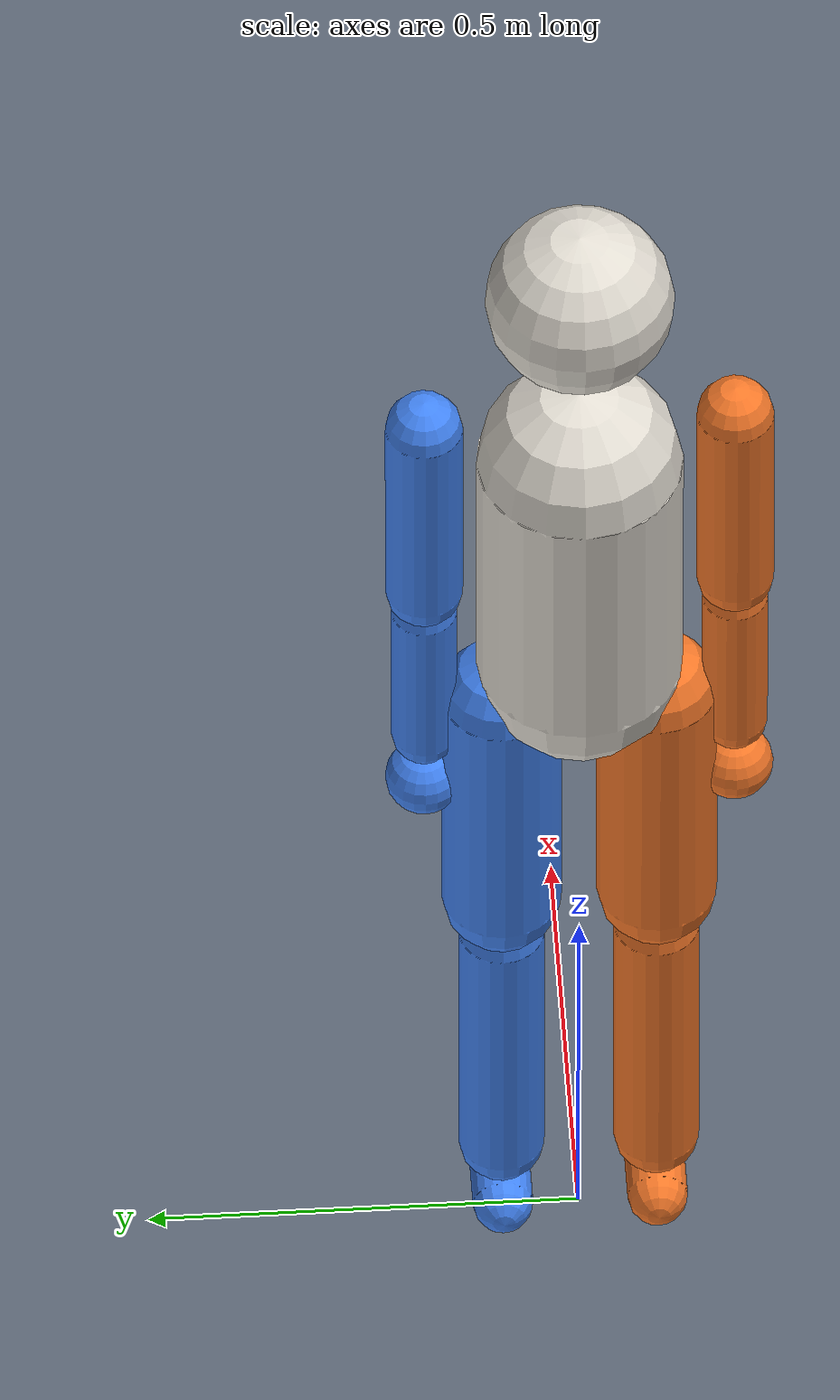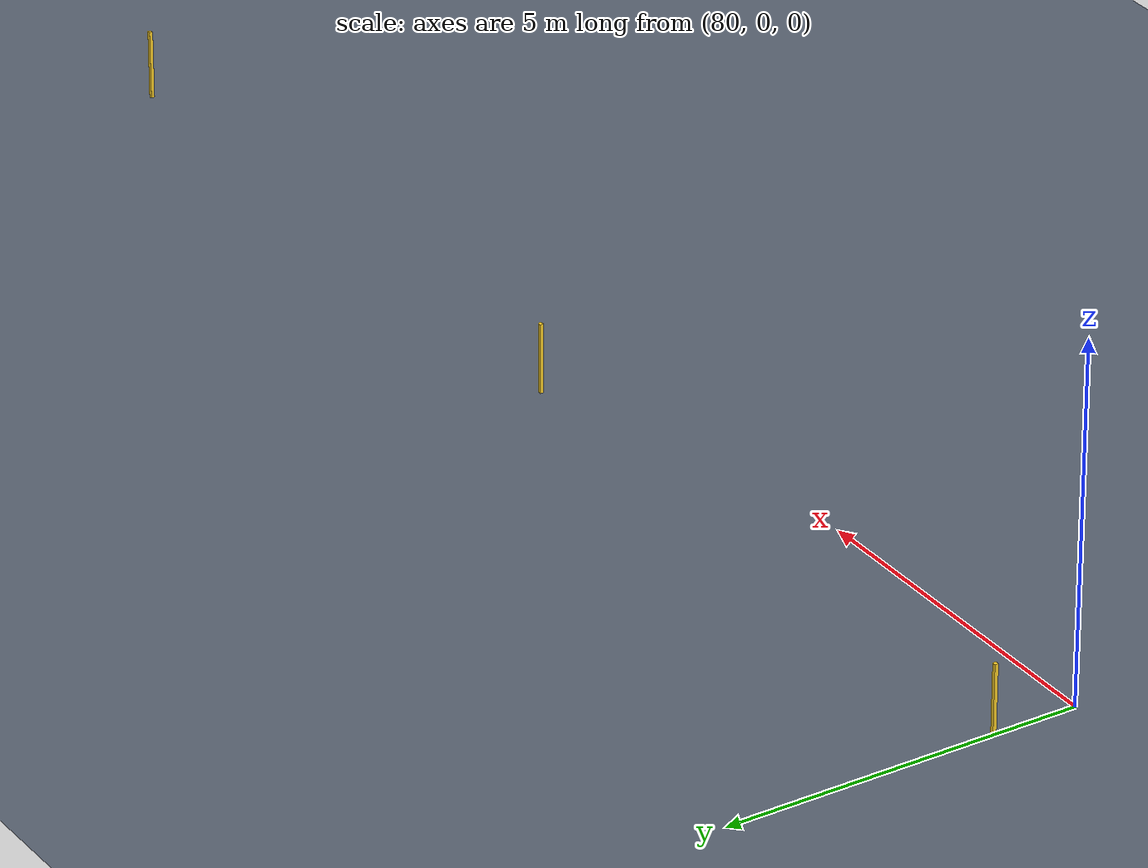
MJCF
<mujoco model="humanoid2d">
  <compiler angle="degree" autolimits="true"/>

  <option timestep="0.0025" iterations="4" ls_iterations="8">
    <flag eulerdamp="disable"/>
  </option>

  <custom>
    <!-- Contact budget for the MJX "jax" backend. -->
    <numeric name="max_contact_points" data="8"/>
    <numeric name="max_geom_pairs" data="8"/>
  </custom>

  <statistic extent="3" center="0 0 1"/>

  <visual>
    <global offwidth="1280" offheight="720"/>
    <headlight ambient=".45 .45 .45" diffuse=".6 .6 .6" specular=".1 .1 .1"/>
    <map znear=".01"/>
    <quality shadowsize="4096"/>
  </visual>

  <asset>
    <texture name="skybox" type="skybox" builtin="gradient" rgb1=".62 .76 .9" rgb2=".97 .98 1" width="512" height="512"/>
    <texture name="track" type="2d" builtin="flat" rgb1=".35 .39 .45" mark="edge" markrgb=".95 .95 .95" width="512" height="512"/>
    <material name="track" texture="track" texrepeat=".2 .01" texuniform="true" reflectance=".05"/>
    <material name="marker" rgba=".97 .8 .15 1"/>
    <material name="body" rgba=".88 .86 .82 1"/>
    <material name="left" rgba=".26 .52 .96 1"/>
    <material name="right" rgba=".96 .47 .16 1"/>
    <material name="site" rgba=".85 .1 .1 .6"/>
  </asset>

  <default>
    <joint type="hinge" axis="0 1 0" damping="2" armature="0.05" solimplimit="0 .99 .01"/>
    <geom type="capsule" contype="0" conaffinity="0" condim="3" friction="1 .005 .0001" material="body"/>
    <motor ctrlrange="-1 1"/>
    <site size=".02" group="3" material="site"/>
    <default class="collide">
      <geom contype="1" conaffinity="0"/>
    </default>
    <default class="arm">
      <joint damping="0.5" armature="0.02"/>
    </default>
    <default class="marker">
      <geom type="box" size=".025 .025 .5" contype="0" conaffinity="0" material="marker"/>
    </default>
  </default>

  <worldbody>
    <light name="sun" pos="0 -2 8" dir="0 .25 -1" directional="true" diffuse=".55 .55 .55" castshadow="true"/>
    <!-- Tile edges sit a quarter tile from the plane's center, so x = 147.5 puts
         the cross lines on multiples of 10 m (checked by rendering). -->
    <geom name="floor" type="plane" pos="147.5 0 0" size="157.5 12 .1" material="track" contype="1" conaffinity="1"/>

    <!-- Distance markers: a post every 10 m, behind the runner. -->
    <geom name="marker_010" class="marker" pos="10 1.2 .5"/>
    <geom name="marker_020" class="marker" pos="20 1.2 .5"/>
    <geom name="marker_030" class="marker" pos="30 1.2 .5"/>
    <geom name="marker_040" class="marker" pos="40 1.2 .5"/>
    <geom name="marker_050" class="marker" pos="50 1.2 .5"/>
    <geom name="marker_060" class="marker" pos="60 1.2 .5"/>
    <geom name="marker_070" class="marker" pos="70 1.2 .5"/>
    <geom name="marker_080" class="marker" pos="80 1.2 .5"/>
    <geom name="marker_090" class="marker" pos="90 1.2 .5"/>
    <geom name="marker_100" class="marker" pos="100 1.2 .5"/>
    <geom name="marker_110" class="marker" pos="110 1.2 .5"/>
    <geom name="marker_120" class="marker" pos="120 1.2 .5"/>
    <geom name="marker_130" class="marker" pos="130 1.2 .5"/>
    <geom name="marker_140" class="marker" pos="140 1.2 .5"/>
    <geom name="marker_150" class="marker" pos="150 1.2 .5"/>

    <!-- Torso frame sits at the hip joints (pelvis). Straight legs put the soles on z=0. -->
    <body name="torso" pos="0 0 .93">
      <camera name="track" mode="trackcom" pos="0 -4.5 1.15" xyaxes="1 0 0 0 .26 .97"/>
      <joint name="rootx" type="slide" axis="1 0 0" damping="0" armature="0"/>
      <joint name="rootz" type="slide" axis="0 0 1" damping="0" armature="0"/>
      <joint name="rooty" type="hinge" axis="0 1 0" damping="0" armature="0"/>
      <geom name="torso" class="collide" fromto="0 0 .06 0 0 .42" size=".12" mass="34.8"/>

      <body name="head" pos="0 0 .71">
        <geom name="head" class="collide" type="sphere" size=".11" mass="5.7"/>
      </body>

      <body name="right_thigh" pos="0 -.09 0">
        <joint name="right_hip" range="-130 30"/>
        <geom name="right_thigh" fromto="0 0 0 0 0 -.36" size=".07" mass="7.0" material="right"/>
        <body name="right_shin" pos="0 0 -.43">
          <joint name="right_knee" range="0 150"/>
          <geom name="right_shin" class="collide" fromto="0 0 0 0 0 -.38" size=".05" mass="3.25" material="right"/>
          <body name="right_foot" pos="0 0 -.43">
            <joint name="right_ankle" range="-30 50" damping="1"/>
            <geom name="right_foot" class="collide" fromto="-.03 0 -.033 .17 0 -.033" size=".035" mass="1.0" material="right"/>
            <site name="right_heel" pos="-.03 0 -.033"/>
            <site name="right_toe" pos=".17 0 -.033"/>
          </body>
        </body>
      </body>

      <body name="left_thigh" pos="0 .09 0">
        <joint name="left_hip" range="-130 30"/>
        <geom name="left_thigh" fromto="0 0 0 0 0 -.36" size=".07" mass="7.0" material="left"/>
        <body name="left_shin" pos="0 0 -.43">
          <joint name="left_knee" range="0 150"/>
          <geom name="left_shin" class="collide" fromto="0 0 0 0 0 -.38" size=".05" mass="3.25" material="left"/>
          <body name="left_foot" pos="0 0 -.43">
            <joint name="left_ankle" range="-30 50" damping="1"/>
            <geom name="left_foot" class="collide" fromto="-.03 0 -.033 .17 0 -.033" size=".035" mass="1.0" material="left"/>
            <site name="left_heel" pos="-.03 0 -.033"/>
            <site name="left_toe" pos=".17 0 -.033"/>
          </body>
        </body>
      </body>

      <body name="right_upper_arm" pos="0 -.18 .49" childclass="arm">
        <joint name="right_shoulder" range="-180 60"/>
        <geom name="right_upper_arm" fromto="0 0 0 0 0 -.29" size=".045" mass="2.0" material="right"/>
        <body name="right_forearm" pos="0 0 -.33">
          <joint name="right_elbow" range="-150 0"/>
          <geom name="right_forearm" fromto="0 0 0 0 0 -.22" size=".038" mass="1.1" material="right"/>
          <body name="right_hand" pos="0 0 -.25">
            <geom name="right_hand" class="collide" type="sphere" pos="0 0 -.05" size=".045" mass=".45" material="right"/>
            <site name="right_hand_grip" pos="0 0 -.05"/>
          </body>
        </body>
      </body>

      <body name="left_upper_arm" pos="0 .18 .49" childclass="arm">
        <joint name="left_shoulder" range="-180 60"/>
        <geom name="left_upper_arm" fromto="0 0 0 0 0 -.29" size=".045" mass="2.0" material="left"/>
        <body name="left_forearm" pos="0 0 -.33">
          <joint name="left_elbow" range="-150 0"/>
          <geom name="left_forearm" fromto="0 0 0 0 0 -.22" size=".038" mass="1.1" material="left"/>
          <body name="left_hand" pos="0 0 -.25">
            <geom name="left_hand" class="collide" type="sphere" pos="0 0 -.05" size=".045" mass=".45" material="left"/>
            <site name="left_hand_grip" pos="0 0 -.05"/>
          </body>
        </body>
      </body>
    </body>
  </worldbody>

  <keyframe>
    <!-- Standing start: knees bent 16 deg, feet flat, soles 0.5 mm above the floor. -->
    <key name="stand" qpos="0 -.0099 0  -.1396 .2793 -.1396  -.1396 .2793 -.1396  -.0698 -.2094  -.0698 -.2094"/>
  </keyframe>

  <actuator>
    <motor name="right_hip" joint="right_hip" gear="250"/>
    <motor name="right_knee" joint="right_knee" gear="200"/>
    <motor name="right_ankle" joint="right_ankle" gear="120"/>
    <motor name="left_hip" joint="left_hip" gear="250"/>
    <motor name="left_knee" joint="left_knee" gear="200"/>
    <motor name="left_ankle" joint="left_ankle" gear="120"/>
    <motor name="right_shoulder" joint="right_shoulder" gear="60"/>
    <motor name="right_elbow" joint="right_elbow" gear="40"/>
    <motor name="left_shoulder" joint="left_shoulder" gear="60"/>
    <motor name="left_elbow" joint="left_elbow" gear="40"/>
  </actuator>
</mujoco>
